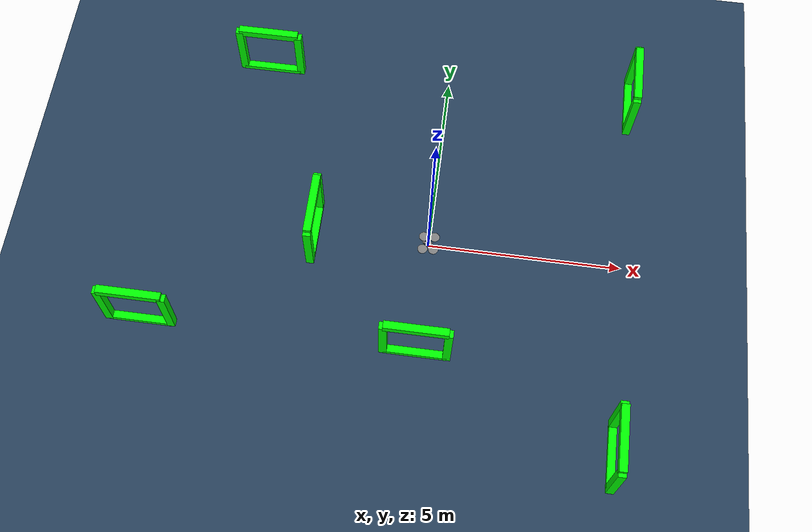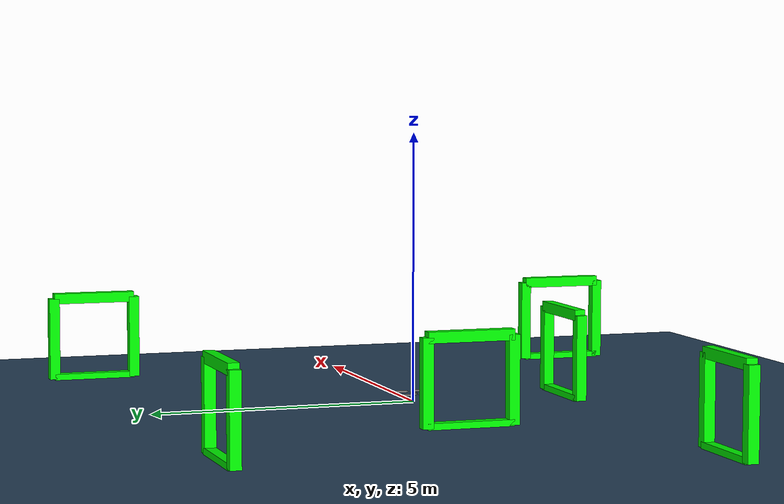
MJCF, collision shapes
<mujoco model="Skydio X2 scene">
  <visual>
    <map znear="0.01" zfar="1000"/>
  </visual>
  <include file="x2.xml"/>
  <include file="gates.xml"/>

  <statistic center="0 0 0.1" extent="0.6" meansize=".05"/>

  <visual>
    <headlight diffuse="0.8 0.8 0.8" ambient="0.3 0.3 0.3" specular="0 0 0"/>
    <rgba haze="0.15 0.25 0.35 1"/>
    <global azimuth="-20" elevation="-20" ellipsoidinertia="true"/>
  </visual>

  <asset>
    <texture type="skybox" builtin="gradient" rgb1="0.3 0.5 0.7" rgb2="0 0 0" width="512" height="3072"/>
    <texture type="2d" name="groundplane" builtin="checker" mark="edge" rgb1="0.2 0.3 0.4" rgb2="0.1 0.2 0.3"
      markrgb="0.8 0.8 0.8" width="300" height="300"/>
    <material name="groundplane" texture="groundplane" texuniform="true" texrepeat="5 5" reflectance="0.2"/>
  </asset>

  <worldbody>
    <light pos="0 0 1.5" dir="0 0 -1" directional="true"/>
    <geom name="floor" size="0 0 0.05" type="plane" material="groundplane"/>
  </worldbody>
</mujoco>

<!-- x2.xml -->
<mujoco model="Skydio X2">
  <compiler autolimits="true" assetdir="assets"/>

  <option timestep="0.01" density="1.225" viscosity="1.8e-5"/>

  <default>
    <default class="x2">
      <geom mass="0"/>
      <motor ctrlrange="0 13"/>
      <mesh scale="0.01 0.01 0.01"/>
      <default class="visual">
        <geom group="2" type="mesh" contype="0" conaffinity="0"/>
      </default>
      <default class="collision">
        <geom group="3" type="box"/>
        <default class="rotor">
          <geom type="ellipsoid" size=".13 .13 .01"/>
        </default>
      </default>
      <site group="5"/>
    </default>
  </default>

  <asset>
    <texture type="2d" file="X2_lowpoly_texture_SpinningProps_1024.png"/>
    <material name="phong3SG" texture="X2_lowpoly_texture_SpinningProps_1024"/>
    <material name="invisible" rgba="0 0 0 0"/>

    <mesh class="x2" file="X2_lowpoly.obj"/>
  </asset>

  <worldbody>
    <light name="spotlight" mode="targetbodycom" target="x2" pos="0 -1 2"/>
    <body name="x2" pos="0 0 0.1" childclass="x2">
      <freejoint/>
      <camera name="track" pos="-1 0 .5" xyaxes="0 -1 0 1 0 2" mode="trackcom"/>
      <camera name="dronecam" pos="-0.1 0 0.1" xyaxes="0 1 0 0 0 1" mode="fixed"/>
      <site name="imu" pos="0 0 .02"/>
      <geom material="phong3SG" mesh="X2_lowpoly" class="visual" quat="0 0 1 1"/>
      <geom class="collision" size=".06 .027 .02" pos=".04 0 .02"/>
      <geom class="collision" size=".06 .027 .02" pos=".04 0 .06"/>
      <geom class="collision" size=".05 .027 .02" pos="-.07 0 .065"/>
      <geom class="collision" size=".023 .017 .01" pos="-.137 .008 .065" quat="1 0 0 1"/>
      <geom name="rotor1" class="rotor" pos="-.14 -.18 .05" mass=".25"/>
      <geom name="rotor2" class="rotor" pos="-.14 .18 .05" mass=".25"/>
      <geom name="rotor3" class="rotor" pos=".14 .18 .08" mass=".25"/>
      <geom name="rotor4" class="rotor" pos=".14 -.18 .08" mass=".25"/>
      <geom size=".16 .04 .02" pos="0 0 0.02" type="ellipsoid" mass=".325" class="visual" material="invisible"/>
      <site name="thrust1" pos="-.14 -.18 .05"/>
      <site name="thrust2" pos="-.14 .18 .05"/>
      <site name="thrust3" pos=".14 .18 .08"/>
      <site name="thrust4" pos=".14 -.18 .08"/>
    </body>
  </worldbody>

  <actuator>
    <motor class="x2" name="thrust1" site="thrust1" gear="0 0 1 0 0 .0201"/>
    <motor class="x2" name="thrust2" site="thrust2" gear="0 0 1 0 0 -.0201"/>
    <motor class="x2" name="thrust3" site="thrust3" gear="0 0 1 0 0 .0201"/>
    <motor class="x2" name="thrust4" site="thrust4" gear="0 0 1 0 0 -.0201"/>
  </actuator>

  <sensor>
    <gyro name="body_gyro" site="imu"/>
    <accelerometer name="body_linacc" site="imu"/>
    <framequat name="body_quat" objtype="site" objname="imu"/>
  </sensor>

  <keyframe>
    <key name="hover" qpos="0 0 .3 1 0 0 0" ctrl="3.2495625 3.2495625 3.2495625 3.2495625"/>
  </keyframe>
</mujoco>

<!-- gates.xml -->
<mujoco model="simple_shapes">
  <worldbody>
    <body name="gate1" pos="-3 0 0" euler="0 0 270">
      <geom type="box" size="0.8 0.1 0.1" pos="0 0 0" rgba="0 1 0 1"/>
      <geom type="box" size="0.1 0.1 0.8" pos="-0.8 0 0.8" rgba="0 1 0 1"/>
      <geom type="box" size="0.8 0.1 0.1" pos="0 0 1.6" rgba="0 1 0 1"/>
      <geom type="box" size="0.1 0.1 0.8" pos="0.8 0 0.8" rgba="0 1 0 1"/>
    </body>

    <body name="gate2" pos="-7 -3 0">
      <geom type="box" size="0.8 0.1 0.1" pos="0 0 0" rgba="0 1 0 1"/>
      <geom type="box" size="0.1 0.1 0.8" pos="-0.8 0 0.8" rgba="0 1 0 1"/>
      <geom type="box" size="0.8 0.1 0.1" pos="0 0 1.6" rgba="0 1 0 1"/>
      <geom type="box" size="0.1 0.1 0.8" pos="0.8 0 0.8" rgba="0 1 0 1"/>
    </body>

    <body name="gate3" pos="0 -3 0" euler="0 0 180">
      <geom type="box" size="0.8 0.1 0.1" pos="0 0 0" rgba="0 1 0 1"/>
      <geom type="box" size="0.1 0.1 0.8" pos="-0.8 0 0.8" rgba="0 1 0 1"/>
      <geom type="box" size="0.8 0.1 0.1" pos="0 0 1.6" rgba="0 1 0 1"/>
      <geom type="box" size="0.1 0.1 0.8" pos="0.8 0 0.8" rgba="0 1 0 1"/>
    </body>

    <body name="gate4" pos="5 5 0" euler="0 0 90">
      <geom type="box" size="0.8 0.1 0.1" pos="0 0 0" rgba="0 1 0 1"/>
      <geom type="box" size="0.1 0.1 0.8" pos="-0.8 0 0.8" rgba="0 1 0 1"/>
      <geom type="box" size="0.8 0.1 0.1" pos="0 0 1.6" rgba="0 1 0 1"/>
      <geom type="box" size="0.1 0.1 0.8" pos="0.8 0 0.8" rgba="0 1 0 1"/>
    </body>

    <body name="gate5" pos="5 -5 0" euler="0 0 90">
      <geom type="box" size="0.8 0.1 0.1" pos="0 0 0" rgba="0 1 0 1"/>
      <geom type="box" size="0.1 0.1 0.8" pos="-0.8 0 0.8" rgba="0 1 0 1"/>
      <geom type="box" size="0.8 0.1 0.1" pos="0 0 1.6" rgba="0 1 0 1"/>
      <geom type="box" size="0.1 0.1 0.8" pos="0.8 0 0.8" rgba="0 1 0 1"/>
    </body>

    <body name="gate6" pos="-5 5 0" >
      <geom type="box" size="0.8 0.1 0.1" pos="0 0 0" rgba="0 1 0 1"/>
      <geom type="box" size="0.1 0.1 0.8" pos="-0.8 0 0.8" rgba="0 1 0 1"/>
      <geom type="box" size="0.8 0.1 0.1" pos="0 0 1.6" rgba="0 1 0 1"/>
      <geom type="box" size="0.1 0.1 0.8" pos="0.8 0 0.8" rgba="0 1 0 1"/>
    </body>

  </worldbody>
</mujoco>
